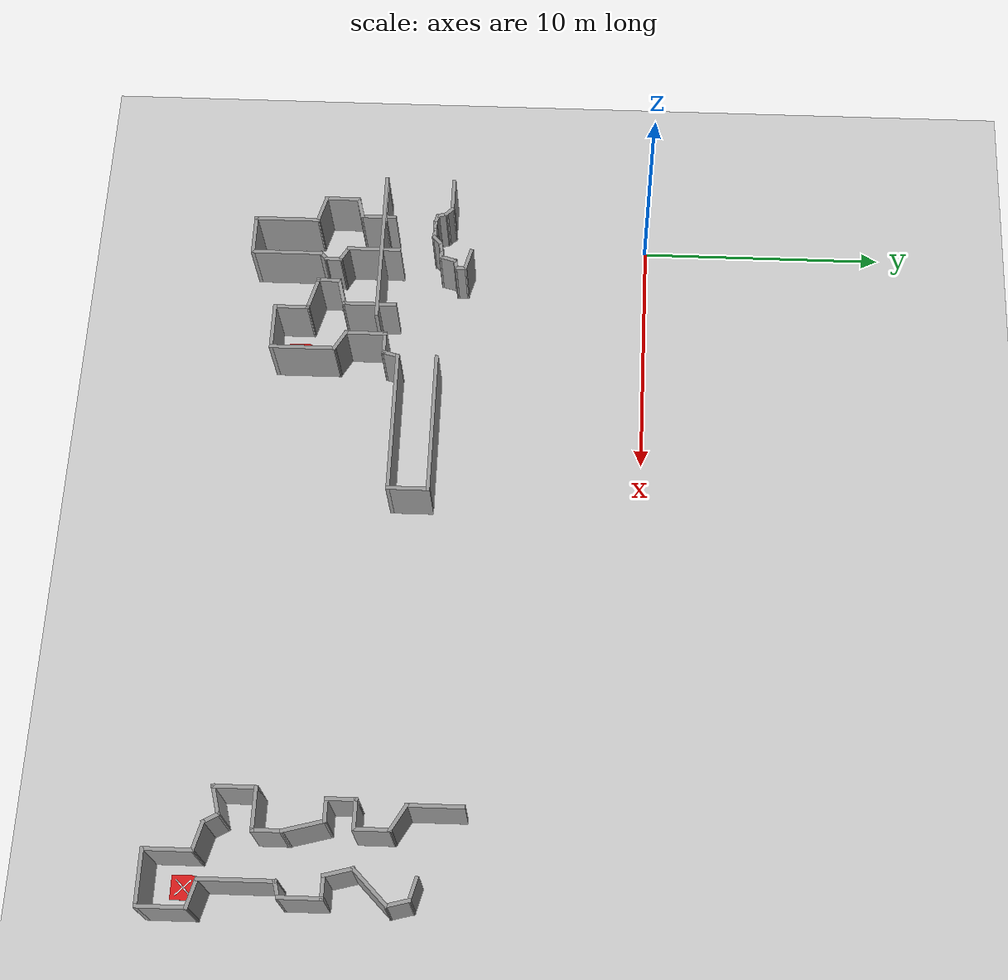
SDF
<sdf version="1.7">
 <world name="default">
  <model name="ground_plane">
   <static>1</static>
   <link name="link">
    <collision name="collision">
     <geometry><plane><normal>0 0 1</normal><size>100 100</size></plane></geometry>
     <surface>
      <contact><collide_bitmask>65535</collide_bitmask></contact>
      <friction><ode><mu>100</mu><mu2>50</mu2></ode></friction>
     </surface>
    </collision>
    <visual name="visual">
     <cast_shadows>0</cast_shadows>
     <geometry><plane><normal>0 0 1</normal><size>100 100</size></plane></geometry>
     <material>
      <script><uri>file://media/materials/scripts/gazebo.material</uri><name>Gazebo/Grey</name></script>
     </material>
    </visual>
   </link>
  </model>
  <model name="latest_world">
   <pose>-1.4911 -0.096187 0 0 -0 0</pose>
   <link name="Wall_16">
    <collision name="Wall_16_Collision">
     <geometry><box><size>1 0.15 2.5</size></box></geometry>
     <pose>0 0 1.25 0 -0 0</pose>
    </collision>
    <visual name="Wall_16_Visual">
     <pose>0 0 1.25 0 -0 0</pose>
     <geometry><box><size>1 0.15 2.5</size></box></geometry>
     <material>
      <script><uri>file://media/materials/scripts/gazebo.material</uri><name>Gazebo/Grey</name></script>
      <ambient>1 1 1 1</ambient>
     </material>
     <meta><layer>0</layer></meta>
    </visual>
    <pose>29.6813 -7.97454 0 0 -0 -0.261799</pose>
   </link>
   <link name="Wall_17">
    <collision name="Wall_17_Collision">
     <geometry><box><size>1 0.15 2.5</size></box></geometry>
     <pose>0 0 1.25 0 -0 0</pose>
    </collision>
    <visual name="Wall_17_Visual">
     <pose>0 0 1.25 0 -0 0</pose>
     <geometry><box><size>1 0.15 2.5</size></box></geometry>
     <material>
      <script><uri>file://media/materials/scripts/gazebo.material</uri><name>Gazebo/Grey</name></script>
      <ambient>1 1 1 1</ambient>
     </material>
     <meta><layer>0</layer></meta>
    </visual>
    <pose>30.2018 -8.49506 0 0 -0 -1.309</pose>
   </link>
   <link name="Wall_18">
    <collision name="Wall_18_Collision">
     <geometry><box><size>2 0.15 2.5</size></box></geometry>
     <pose>0 0 1.25 0 -0 0</pose>
    </collision>
    <visual name="Wall_18_Visual">
     <pose>0 0 1.25 0 -0 0</pose>
     <geometry><box><size>2 0.15 2.5</size></box></geometry>
     <material>
      <script><uri>file://media/materials/scripts/gazebo.material</uri><name>Gazebo/Grey</name></script>
      <ambient>1 1 1 1</ambient>
     </material>
     <meta><layer>0</layer></meta>
    </visual>
    <pose>29.6577 -9.55965 0 0 -0 -2.35619</pose>
   </link>
   <link name="Wall_19">
    <collision name="Wall_19_Collision">
     <geometry><box><size>1.25 0.15 2.5</size></box></geometry>
     <pose>0 0 1.25 0 -0 0</pose>
    </collision>
    <visual name="Wall_19_Visual">
     <pose>0 0 1.25 0 -0 0</pose>
     <geometry><box><size>1.25 0.15 2.5</size></box></geometry>
     <material>
      <script><uri>file://media/materials/scripts/gazebo.material</uri><name>Gazebo/Grey</name></script>
      <ambient>1 1 1 1</ambient>
     </material>
     <meta><layer>0</layer></meta>
    </visual>
    <pose>29.146 -10.745 0 0 -0 -1.309</pose>
   </link>
   <link name="Wall_20">
    <collision name="Wall_20_Collision">
     <geometry><box><size>1 0.15 2.5</size></box></geometry>
     <pose>0 0 1.25 0 -0 0</pose>
    </collision>
    <visual name="Wall_20_Visual">
     <pose>0 0 1.25 0 -0 0</pose>
     <geometry><box><size>1 0.15 2.5</size></box></geometry>
     <material>
      <script><uri>file://media/materials/scripts/gazebo.material</uri><name>Gazebo/Grey</name></script>
      <ambient>1 1 1 1</ambient>
     </material>
     <meta><layer>0</layer></meta>
    </visual>
    <pose>29.7134 -11.2762 0 0 -0 0</pose>
   </link>
   <link name="Wall_21">
    <collision name="Wall_21_Collision">
     <geometry><box><size>1.75 0.15 2.5</size></box></geometry>
     <pose>0 0 1.25 0 -0 0</pose>
    </collision>
    <visual name="Wall_21_Visual">
     <pose>0 0 1.25 0 -0 0</pose>
     <geometry><box><size>1.75 0.15 2.5</size></box></geometry>
     <material>
      <script><uri>file://media/materials/scripts/gazebo.material</uri><name>Gazebo/Grey</name></script>
      <ambient>1 1 1 1</ambient>
     </material>
     <meta><layer>0</layer></meta>
    </visual>
    <pose>30.1384 -12.0762 0 0 -0 -1.5708</pose>
   </link>
   <link name="Wall_22">
    <collision name="Wall_22_Collision">
     <geometry><box><size>0.75 0.15 2.5</size></box></geometry>
     <pose>0 0 1.25 0 -0 0</pose>
    </collision>
    <visual name="Wall_22_Visual">
     <pose>0 0 1.25 0 -0 0</pose>
     <geometry><box><size>0.75 0.15 2.5</size></box></geometry>
     <material>
      <script><uri>file://media/materials/scripts/gazebo.material</uri><name>Gazebo/Grey</name></script>
      <ambient>1 1 1 1</ambient>
     </material>
     <meta><layer>0</layer></meta>
    </visual>
    <pose>29.8486 -12.9539 0 0 -0 -2.87979</pose>
   </link>
   <link name="Wall_23">
    <collision name="Wall_23_Collision">
     <geometry><box><size>3 0.15 2.5</size></box></geometry>
     <pose>0 0 1.25 0 -0 0</pose>
    </collision>
    <visual name="Wall_23_Visual">
     <pose>0 0 1.25 0 -0 0</pose>
     <geometry><box><size>3 0.15 2.5</size></box></geometry>
     <material>
      <script><uri>file://media/materials/scripts/gazebo.material</uri><name>Gazebo/Grey</name></script>
      <ambient>1 1 1 1</ambient>
     </material>
     <meta><layer>0</layer></meta>
    </visual>
    <pose>29.5588 -14.4565 0 0 -0 -1.5708</pose>
   </link>
   <link name="Wall_24">
    <collision name="Wall_24_Collision">
     <geometry><box><size>1.25 0.15 2.5</size></box></geometry>
     <pose>0 0 1.25 0 -0 0</pose>
    </collision>
    <visual name="Wall_24_Visual">
     <pose>0 0 1.25 0 -0 0</pose>
     <geometry><box><size>1.25 0.15 2.5</size></box></geometry>
     <material>
      <script><uri>file://media/materials/scripts/gazebo.material</uri><name>Gazebo/Grey</name></script>
      <ambient>1 1 1 1</ambient>
     </material>
     <meta><layer>0</layer></meta>
    </visual>
    <pose>30.0901 -16.0239 0 0 -0 -0.261799</pose>
   </link>
   <link name="Wall_25">
    <collision name="Wall_25_Collision">
     <geometry><box><size>2 0.15 2.5</size></box></geometry>
     <pose>0 0 1.25 0 -0 0</pose>
    </collision>
    <visual name="Wall_25_Visual">
     <pose>0 0 1.25 0 -0 0</pose>
     <geometry><box><size>2 0.15 2.5</size></box></geometry>
     <material>
      <script><uri>file://media/materials/scripts/gazebo.material</uri><name>Gazebo/Grey</name></script>
      <ambient>1 1 1 1</ambient>
     </material>
     <meta><layer>0</layer></meta>
    </visual>
    <pose>30.6213 -17.0912 0 0 -0 -1.5708</pose>
   </link>
   <link name="Wall_26">
    <collision name="Wall_26_Collision">
     <geometry><box><size>2.25 0.15 2.5</size></box></geometry>
     <pose>0 0 1.25 0 -0 0</pose>
    </collision>
    <visual name="Wall_26_Visual">
     <pose>0 0 1.25 0 -0 0</pose>
     <geometry><box><size>2.25 0.15 2.5</size></box></geometry>
     <material>
      <script><uri>file://media/materials/scripts/gazebo.material</uri><name>Gazebo/Grey</name></script>
      <ambient>1 1 1 1</ambient>
     </material>
     <meta><layer>0</layer></meta>
    </visual>
    <pose>29.5713 -18.0162 0 0 -0 3.14159</pose>
   </link>
   <link name="Wall_27">
    <collision name="Wall_27_Collision">
     <geometry><box><size>2 0.15 2.5</size></box></geometry>
     <pose>0 0 1.25 0 -0 0</pose>
    </collision>
    <visual name="Wall_27_Visual">
     <pose>0 0 1.25 0 -0 0</pose>
     <geometry><box><size>2 0.15 2.5</size></box></geometry>
     <material>
      <script><uri>file://media/materials/scripts/gazebo.material</uri><name>Gazebo/Grey</name></script>
      <ambient>1 1 1 1</ambient>
     </material>
     <meta><layer>0</layer></meta>
    </visual>
    <pose>28.5213 -17.0912 0 0 -0 1.5708</pose>
   </link>
   <link name="Wall_28">
    <collision name="Wall_28_Collision">
     <geometry><box><size>1.25 0.15 2.5</size></box></geometry>
     <pose>0 0 1.25 0 -0 0</pose>
    </collision>
    <visual name="Wall_28_Visual">
     <pose>0 0 1.25 0 -0 0</pose>
     <geometry><box><size>1.25 0.15 2.5</size></box></geometry>
     <material>
      <script><uri>file://media/materials/scripts/gazebo.material</uri><name>Gazebo/Grey</name></script>
      <ambient>1 1 1 1</ambient>
     </material>
     <meta><layer>0</layer></meta>
    </visual>
    <pose>27.9901 -16.0239 0 0 -0 2.87979</pose>
   </link>
   <link name="Wall_280">
    <collision name="Wall_280_Collision">
     <geometry><box><size>1.5 0.15 2.5</size></box></geometry>
     <pose>0 0 1.25 0 -0 0</pose>
    </collision>
    <visual name="Wall_280_Visual">
     <pose>0 0 1.25 0 -0 0</pose>
     <geometry><box><size>1.5 0.15 2.5</size></box></geometry>
     <material>
      <script><uri>file://media/materials/scripts/gazebo.material</uri><name>Gazebo/Grey</name></script>
      <ambient>1 1 1 1</ambient>
     </material>
     <meta><layer>0</layer></meta>
    </visual>
    <pose>0.319863 -8.14426 0 0 -0 0</pose>
   </link>
   <link name="Wall_281">
    <collision name="Wall_281_Collision">
     <geometry><box><size>0.5 0.15 2.5</size></box></geometry>
     <pose>0 0 1.25 0 -0 0</pose>
    </collision>
    <visual name="Wall_281_Visual">
     <pose>0 0 1.25 0 -0 0</pose>
     <geometry><box><size>0.5 0.15 2.5</size></box></geometry>
     <material>
      <script><uri>file://media/materials/scripts/gazebo.material</uri><name>Gazebo/Grey</name></script>
      <ambient>1 1 1 1</ambient>
     </material>
     <meta><layer>0</layer></meta>
    </visual>
    <pose>1.11861 -8.26801 0 0 -0 -0.785398</pose>
   </link>
   <link name="Wall_282">
    <collision name="Wall_282_Collision">
     <geometry><box><size>0.5 0.15 2.5</size></box></geometry>
     <pose>0 0 1.25 0 -0 0</pose>
    </collision>
    <visual name="Wall_282_Visual">
     <pose>0 0 1.25 0 -0 0</pose>
     <geometry><box><size>0.5 0.15 2.5</size></box></geometry>
     <material>
      <script><uri>file://media/materials/scripts/gazebo.material</uri><name>Gazebo/Grey</name></script>
      <ambient>1 1 1 1</ambient>
     </material>
     <meta><layer>0</layer></meta>
    </visual>
    <pose>1.28764 -8.56079 0 0 -0 -1.309</pose>
   </link>
   <link name="Wall_283">
    <collision name="Wall_283_Collision">
     <geometry><box><size>0.5 0.15 2.5</size></box></geometry>
     <pose>0 0 1.25 0 -0 0</pose>
    </collision>
    <visual name="Wall_283_Visual">
     <pose>0 0 1.25 0 -0 0</pose>
     <geometry><box><size>0.5 0.15 2.5</size></box></geometry>
     <material>
      <script><uri>file://media/materials/scripts/gazebo.material</uri><name>Gazebo/Grey</name></script>
      <ambient>1 1 1 1</ambient>
     </material>
     <meta><layer>0</layer></meta>
    </visual>
    <pose>1.50197 -8.77512 0 0 -0 -0.261799</pose>
   </link>
   <link name="Wall_284">
    <collision name="Wall_284_Collision">
     <geometry><box><size>0.5 0.15 2.5</size></box></geometry>
     <pose>0 0 1.25 0 -0 0</pose>
    </collision>
    <visual name="Wall_284_Visual">
     <pose>0 0 1.25 0 -0 0</pose>
     <geometry><box><size>0.5 0.15 2.5</size></box></geometry>
     <material>
      <script><uri>file://media/materials/scripts/gazebo.material</uri><name>Gazebo/Grey</name></script>
      <ambient>1 1 1 1</ambient>
     </material>
     <meta><layer>0</layer></meta>
    </visual>
    <pose>1.84601 -8.82041 0 0 -0 0</pose>
   </link>
   <link name="Wall_285">
    <collision name="Wall_285_Collision">
     <geometry><box><size>0.5 0.15 2.5</size></box></geometry>
     <pose>0 0 1.25 0 -0 0</pose>
    </collision>
    <visual name="Wall_285_Visual">
     <pose>0 0 1.25 0 -0 0</pose>
     <geometry><box><size>0.5 0.15 2.5</size></box></geometry>
     <material>
      <script><uri>file://media/materials/scripts/gazebo.material</uri><name>Gazebo/Grey</name></script>
      <ambient>1 1 1 1</ambient>
     </material>
     <meta><layer>0</layer></meta>
    </visual>
    <pose>2.19601 -8.82041 0 0 -0 0</pose>
   </link>
   <link name="Wall_286">
    <collision name="Wall_286_Collision">
     <geometry><box><size>0.5 0.15 2.5</size></box></geometry>
     <pose>0 0 1.25 0 -0 0</pose>
    </collision>
    <visual name="Wall_286_Visual">
     <pose>0 0 1.25 0 -0 0</pose>
     <geometry><box><size>0.5 0.15 2.5</size></box></geometry>
     <material>
      <script><uri>file://media/materials/scripts/gazebo.material</uri><name>Gazebo/Grey</name></script>
      <ambient>1 1 1 1</ambient>
     </material>
     <meta><layer>0</layer></meta>
    </visual>
    <pose>2.49476 -8.69667 0 0 -0 0.785398</pose>
   </link>
   <link name="Wall_287">
    <collision name="Wall_287_Collision">
     <geometry><box><size>0.5 0.15 2.5</size></box></geometry>
     <pose>0 0 1.25 0 -0 0</pose>
    </collision>
    <visual name="Wall_287_Visual">
     <pose>0 0 1.25 0 -0 0</pose>
     <geometry><box><size>0.5 0.15 2.5</size></box></geometry>
     <material>
      <script><uri>file://media/materials/scripts/gazebo.material</uri><name>Gazebo/Grey</name></script>
      <ambient>1 1 1 1</ambient>
     </material>
     <meta><layer>0</layer></meta>
    </visual>
    <pose>2.78754 -8.52763 0 0 -0 0.261799</pose>
   </link>
   <link name="Wall_288">
    <collision name="Wall_288_Collision">
     <geometry><box><size>0.5 0.15 2.5</size></box></geometry>
     <pose>0 0 1.25 0 -0 0</pose>
    </collision>
    <visual name="Wall_288_Visual">
     <pose>0 0 1.25 0 -0 0</pose>
     <geometry><box><size>0.5 0.15 2.5</size></box></geometry>
     <material>
      <script><uri>file://media/materials/scripts/gazebo.material</uri><name>Gazebo/Grey</name></script>
      <ambient>1 1 1 1</ambient>
     </material>
     <meta><layer>0</layer></meta>
    </visual>
    <pose>3.13157 -8.48234 0 0 -0 0</pose>
   </link>
   <link name="Wall_289">
    <collision name="Wall_289_Collision">
     <geometry><box><size>0.75 0.15 2.5</size></box></geometry>
     <pose>0 0 1.25 0 -0 0</pose>
    </collision>
    <visual name="Wall_289_Visual">
     <pose>0 0 1.25 0 -0 0</pose>
     <geometry><box><size>0.75 0.15 2.5</size></box></geometry>
     <material>
      <script><uri>file://media/materials/scripts/gazebo.material</uri><name>Gazebo/Grey</name></script>
      <ambient>1 1 1 1</ambient>
     </material>
     <meta><layer>0</layer></meta>
    </visual>
    <pose>3.38422 -8.19256 0 0 -0 1.309</pose>
   </link>
   <link name="Wall_29">
    <collision name="Wall_29_Collision">
     <geometry><box><size>0.75 0.15 2.5</size></box></geometry>
     <pose>0 0 1.25 0 -0 0</pose>
    </collision>
    <visual name="Wall_29_Visual">
     <pose>0 0 1.25 0 -0 0</pose>
     <geometry><box><size>0.75 0.15 2.5</size></box></geometry>
     <material>
      <script><uri>file://media/materials/scripts/gazebo.material</uri><name>Gazebo/Grey</name></script>
      <ambient>1 1 1 1</ambient>
     </material>
     <meta><layer>0</layer></meta>
    </visual>
    <pose>27.3088 -15.6217 0 0 -0 2.0944</pose>
   </link>
   <link name="Wall_290">
    <collision name="Wall_290_Collision">
     <geometry><box><size>0.5 0.15 2.5</size></box></geometry>
     <pose>0 0 1.25 0 -0 0</pose>
    </collision>
    <visual name="Wall_290_Visual">
     <pose>0 0 1.25 0 -0 0</pose>
     <geometry><box><size>0.5 0.15 2.5</size></box></geometry>
     <material>
      <script><uri>file://media/materials/scripts/gazebo.material</uri><name>Gazebo/Grey</name></script>
      <ambient>1 1 1 1</ambient>
     </material>
     <meta><layer>0</layer></meta>
    </visual>
    <pose>3.6309 -7.85749 0 0 -0 0.261799</pose>
   </link>
   <link name="Wall_291">
    <collision name="Wall_291_Collision">
     <geometry><box><size>0.5 0.15 2.5</size></box></geometry>
     <pose>0 0 1.25 0 -0 0</pose>
    </collision>
    <visual name="Wall_291_Visual">
     <pose>0 0 1.25 0 -0 0</pose>
     <geometry><box><size>0.5 0.15 2.5</size></box></geometry>
     <material>
      <script><uri>file://media/materials/scripts/gazebo.material</uri><name>Gazebo/Grey</name></script>
      <ambient>1 1 1 1</ambient>
     </material>
     <meta><layer>0</layer></meta>
    </visual>
    <pose>3.79994 -7.6372 0 0 -0 1.5708</pose>
   </link>
   <link name="Wall_292">
    <collision name="Wall_292_Collision">
     <geometry><box><size>1 0.15 2.5</size></box></geometry>
     <pose>0 0 1.25 0 -0 0</pose>
    </collision>
    <visual name="Wall_292_Visual">
     <pose>0 0 1.25 0 -0 0</pose>
     <geometry><box><size>1 0.15 2.5</size></box></geometry>
     <material>
      <script><uri>file://media/materials/scripts/gazebo.material</uri><name>Gazebo/Grey</name></script>
      <ambient>1 1 1 1</ambient>
     </material>
     <meta><layer>0</layer></meta>
    </visual>
    <pose>3.38942 -7.3522 0 0 -0 2.87979</pose>
   </link>
   <link name="Wall_30">
    <collision name="Wall_30_Collision">
     <geometry><box><size>1.25 0.15 2.5</size></box></geometry>
     <pose>0 0 1.25 0 -0 0</pose>
    </collision>
    <visual name="Wall_30_Visual">
     <pose>0 0 1.25 0 -0 0</pose>
     <geometry><box><size>1.25 0.15 2.5</size></box></geometry>
     <material>
      <script><uri>file://media/materials/scripts/gazebo.material</uri><name>Gazebo/Grey</name></script>
      <ambient>1 1 1 1</ambient>
     </material>
     <meta><layer>0</layer></meta>
    </visual>
    <pose>26.6276 -15.5043 0 0 -0 -2.87979</pose>
   </link>
   <link name="Wall_31">
    <collision name="Wall_31_Collision">
     <geometry><box><size>1.75 0.15 2.5</size></box></geometry>
     <pose>0 0 1.25 0 -0 0</pose>
    </collision>
    <visual name="Wall_31_Visual">
     <pose>0 0 1.25 0 -0 0</pose>
     <geometry><box><size>1.75 0.15 2.5</size></box></geometry>
     <material>
      <script><uri>file://media/materials/scripts/gazebo.material</uri><name>Gazebo/Grey</name></script>
      <ambient>1 1 1 1</ambient>
     </material>
     <meta><layer>0</layer></meta>
    </visual>
    <pose>26.0963 -14.8466 0 0 -0 1.5708</pose>
   </link>
   <link name="Wall_32">
    <collision name="Wall_32_Collision">
     <geometry><box><size>1.75 0.15 2.5</size></box></geometry>
     <pose>0 0 1.25 0 -0 0</pose>
    </collision>
    <visual name="Wall_32_Visual">
     <pose>0 0 1.25 0 -0 0</pose>
     <geometry><box><size>1.75 0.15 2.5</size></box></geometry>
     <material>
      <script><uri>file://media/materials/scripts/gazebo.material</uri><name>Gazebo/Grey</name></script>
      <ambient>1 1 1 1</ambient>
     </material>
     <meta><layer>0</layer></meta>
    </visual>
    <pose>26.8963 -14.0466 0 0 -0 0</pose>
   </link>
   <link name="Wall_33">
    <collision name="Wall_33_Collision">
     <geometry><box><size>1.25 0.15 2.5</size></box></geometry>
     <pose>0 0 1.25 0 -0 0</pose>
    </collision>
    <visual name="Wall_33_Visual">
     <pose>0 0 1.25 0 -0 0</pose>
     <geometry><box><size>1.25 0.15 2.5</size></box></geometry>
     <material>
      <script><uri>file://media/materials/scripts/gazebo.material</uri><name>Gazebo/Grey</name></script>
      <ambient>1 1 1 1</ambient>
     </material>
     <meta><layer>0</layer></meta>
    </visual>
    <pose>27.6963 -13.4966 0 0 -0 1.5708</pose>
   </link>
   <link name="Wall_34">
    <collision name="Wall_34_Collision">
     <geometry><box><size>1.75 0.15 2.5</size></box></geometry>
     <pose>0 0 1.25 0 -0 0</pose>
    </collision>
    <visual name="Wall_34_Visual">
     <pose>0 0 1.25 0 -0 0</pose>
     <geometry><box><size>1.75 0.15 2.5</size></box></geometry>
     <material>
      <script><uri>file://media/materials/scripts/gazebo.material</uri><name>Gazebo/Grey</name></script>
      <ambient>1 1 1 1</ambient>
     </material>
     <meta><layer>0</layer></meta>
    </visual>
    <pose>27.4892 -12.1739 0 0 -0 1.8326</pose>
   </link>
   <link name="Wall_35">
    <collision name="Wall_35_Collision">
     <geometry><box><size>1 0.15 2.5</size></box></geometry>
     <pose>0 0 1.25 0 -0 0</pose>
    </collision>
    <visual name="Wall_35_Visual">
     <pose>0 0 1.25 0 -0 0</pose>
     <geometry><box><size>1 0.15 2.5</size></box></geometry>
     <material>
      <script><uri>file://media/materials/scripts/gazebo.material</uri><name>Gazebo/Grey</name></script>
      <ambient>1 1 1 1</ambient>
     </material>
     <meta><layer>0</layer></meta>
    </visual>
    <pose>26.8572 -11.4011 0 0 -0 3.14159</pose>
   </link>
   <link name="Wall_36">
    <collision name="Wall_36_Collision">
     <geometry><box><size>1.25 0.15 2.5</size></box></geometry>
     <pose>0 0 1.25 0 -0 0</pose>
    </collision>
    <visual name="Wall_36_Visual">
     <pose>0 0 1.25 0 -0 0</pose>
     <geometry><box><size>1.25 0.15 2.5</size></box></geometry>
     <material>
      <script><uri>file://media/materials/scripts/gazebo.material</uri><name>Gazebo/Grey</name></script>
      <ambient>1 1 1 1</ambient>
     </material>
     <meta><layer>0</layer></meta>
    </visual>
    <pose>26.4322 -10.8511 0 0 -0 1.5708</pose>
   </link>
   <link name="Wall_37">
    <collision name="Wall_37_Collision">
     <geometry><box><size>1.25 0.15 2.5</size></box></geometry>
     <pose>0 0 1.25 0 -0 0</pose>
    </collision>
    <visual name="Wall_37_Visual">
     <pose>0 0 1.25 0 -0 0</pose>
     <geometry><box><size>1.25 0.15 2.5</size></box></geometry>
     <material>
      <script><uri>file://media/materials/scripts/gazebo.material</uri><name>Gazebo/Grey</name></script>
      <ambient>1 1 1 1</ambient>
     </material>
     <meta><layer>0</layer></meta>
    </visual>
    <pose>26.9822 -10.3011 0 0 -0 0</pose>
   </link>
   <link name="Wall_38">
    <collision name="Wall_38_Collision">
     <geometry><box><size>1.5 0.15 2.5</size></box></geometry>
     <pose>0 0 1.25 0 -0 0</pose>
    </collision>
    <visual name="Wall_38_Visual">
     <pose>0 0 1.25 0 -0 0</pose>
     <geometry><box><size>1.5 0.15 2.5</size></box></geometry>
     <material>
      <script><uri>file://media/materials/scripts/gazebo.material</uri><name>Gazebo/Grey</name></script>
      <ambient>1 1 1 1</ambient>
     </material>
     <meta><layer>0</layer></meta>
    </visual>
    <pose>27.5322 -9.62614 0 0 -0 1.5708</pose>
   </link>
   <link name="Wall_39">
    <collision name="Wall_39_Collision">
     <geometry><box><size>1.25 0.15 2.5</size></box></geometry>
     <pose>0 0 1.25 0 -0 0</pose>
    </collision>
    <visual name="Wall_39_Visual">
     <pose>0 0 1.25 0 -0 0</pose>
     <geometry><box><size>1.25 0.15 2.5</size></box></geometry>
     <material>
      <script><uri>file://media/materials/scripts/gazebo.material</uri><name>Gazebo/Grey</name></script>
      <ambient>1 1 1 1</ambient>
     </material>
     <meta><layer>0</layer></meta>
    </visual>
    <pose>27.0559 -8.67614 0 0 -0 2.61799</pose>
   </link>
   <link name="Wall_40">
    <collision name="Wall_40_Collision">
     <geometry><box><size>2.25 0.15 2.5</size></box></geometry>
     <pose>0 0 1.25 0 -0 0</pose>
    </collision>
    <visual name="Wall_40_Visual">
     <pose>0 0 1.25 0 -0 0</pose>
     <geometry><box><size>2.25 0.15 2.5</size></box></geometry>
     <material>
      <script><uri>file://media/materials/scripts/gazebo.material</uri><name>Gazebo/Grey</name></script>
      <ambient>1 1 1 1</ambient>
     </material>
     <meta><layer>0</layer></meta>
    </visual>
    <pose>26.5796 -7.35114 0 0 -0 1.5708</pose>
   </link>
   <link name="Wall_53">
    <collision name="Wall_53_Collision">
     <geometry><box><size>6 0.15 2.5</size></box></geometry>
     <pose>0 0 1.25 0 -0 0</pose>
    </collision>
    <visual name="Wall_53_Visual">
     <pose>0 0 1.25 0 -0 0</pose>
     <geometry><box><size>6 0.15 2.5</size></box></geometry>
     <material>
      <script><uri>file://media/materials/scripts/gazebo.material</uri><name>Gazebo/Grey</name></script>
      <ambient>1 1 1 1</ambient>
     </material>
     <meta><layer>0</layer></meta>
    </visual>
    <pose>10.9128 -8.40067 0 0 -0 0</pose>
   </link>
   <link name="Wall_54">
    <collision name="Wall_54_Collision">
     <geometry><box><size>1.75 0.15 2.5</size></box></geometry>
     <pose>0 0 1.25 0 -0 0</pose>
    </collision>
    <visual name="Wall_54_Visual">
     <pose>0 0 1.25 0 -0 0</pose>
     <geometry><box><size>1.75 0.15 2.5</size></box></geometry>
     <material>
      <script><uri>file://media/materials/scripts/gazebo.material</uri><name>Gazebo/Grey</name></script>
      <ambient>1 1 1 1</ambient>
     </material>
     <meta><layer>0</layer></meta>
    </visual>
    <pose>13.8378 -9.20067 0 0 -0 -1.5708</pose>
   </link>
   <link name="Wall_55">
    <collision name="Wall_55_Collision">
     <geometry><box><size>6 0.15 2.5</size></box></geometry>
     <pose>0 0 1.25 0 -0 0</pose>
    </collision>
    <visual name="Wall_55_Visual">
     <pose>0 0 1.25 0 -0 0</pose>
     <geometry><box><size>6 0.15 2.5</size></box></geometry>
     <material>
      <script><uri>file://media/materials/scripts/gazebo.material</uri><name>Gazebo/Grey</name></script>
      <ambient>1 1 1 1</ambient>
     </material>
     <meta><layer>0</layer></meta>
    </visual>
    <pose>10.9128 -10.0007 0 0 -0 3.14159</pose>
   </link>
   <link name="Wall_56">
    <collision name="Wall_56_Collision">
     <geometry><box><size>0.75 0.15 2.5</size></box></geometry>
     <pose>0 0 1.25 0 -0 0</pose>
    </collision>
    <visual name="Wall_56_Visual">
     <pose>0 0 1.25 0 -0 0</pose>
     <geometry><box><size>0.75 0.15 2.5</size></box></geometry>
     <material>
      <script><uri>file://media/materials/scripts/gazebo.material</uri><name>Gazebo/Grey</name></script>
      <ambient>1 1 1 1</ambient>
     </material>
     <meta><layer>0</layer></meta>
    </visual>
    <pose>7.9102 -10.2904 0 0 -0 -1.8326</pose>
   </link>
   <link name="Wall_57">
    <collision name="Wall_57_Collision">
     <geometry><box><size>1 0.15 2.5</size></box></geometry>
     <pose>0 0 1.25 0 -0 0</pose>
    </collision>
    <visual name="Wall_57_Visual">
     <pose>0 0 1.25 0 -0 0</pose>
     <geometry><box><size>1 0.15 2.5</size></box></geometry>
     <material>
      <script><uri>file://media/materials/scripts/gazebo.material</uri><name>Gazebo/Grey</name></script>
      <ambient>1 1 1 1</ambient>
     </material>
     <meta><layer>0</layer></meta>
    </visual>
    <pose>7.40755 -10.5802 0 0 -0 3.14159</pose>
   </link>
   <link name="Wall_58">
    <collision name="Wall_58_Collision">
     <geometry><box><size>1.75 0.15 2.5</size></box></geometry>
     <pose>0 0 1.25 0 -0 0</pose>
    </collision>
    <visual name="Wall_58_Visual">
     <pose>0 0 1.25 0 -0 0</pose>
     <geometry><box><size>1.75 0.15 2.5</size></box></geometry>
     <material>
      <script><uri>file://media/materials/scripts/gazebo.material</uri><name>Gazebo/Grey</name></script>
      <ambient>1 1 1 1</ambient>
     </material>
     <meta><layer>0</layer></meta>
    </visual>
    <pose>6.98255 -11.3802 0 0 -0 -1.5708</pose>
   </link>
   <link name="Wall_59">
    <collision name="Wall_59_Collision">
     <geometry><box><size>1 0.15 2.5</size></box></geometry>
     <pose>0 0 1.25 0 -0 0</pose>
    </collision>
    <visual name="Wall_59_Visual">
     <pose>0 0 1.25 0 -0 0</pose>
     <geometry><box><size>1 0.15 2.5</size></box></geometry>
     <material>
      <script><uri>file://media/materials/scripts/gazebo.material</uri><name>Gazebo/Grey</name></script>
      <ambient>1 1 1 1</ambient>
     </material>
     <meta><layer>0</layer></meta>
    </visual>
    <pose>7.35061 -12.3927 0 0 -0 -0.523599</pose>
   </link>
   <link name="Wall_60">
    <collision name="Wall_60_Collision">
     <geometry><box><size>2.75 0.15 2.5</size></box></geometry>
     <pose>0 0 1.25 0 -0 0</pose>
    </collision>
    <visual name="Wall_60_Visual">
     <pose>0 0 1.25 0 -0 0</pose>
     <geometry><box><size>2.75 0.15 2.5</size></box></geometry>
     <material>
      <script><uri>file://media/materials/scripts/gazebo.material</uri><name>Gazebo/Grey</name></script>
      <ambient>1 1 1 1</ambient>
     </material>
     <meta><layer>0</layer></meta>
    </visual>
    <pose>7.71867 -13.9052 0 0 -0 -1.5708</pose>
   </link>
   <link name="Wall_61">
    <collision name="Wall_61_Collision">
     <geometry><box><size>2 0.15 2.5</size></box></geometry>
     <pose>0 0 1.25 0 -0 0</pose>
    </collision>
    <visual name="Wall_61_Visual">
     <pose>0 0 1.25 0 -0 0</pose>
     <geometry><box><size>2 0.15 2.5</size></box></geometry>
     <material>
      <script><uri>file://media/materials/scripts/gazebo.material</uri><name>Gazebo/Grey</name></script>
      <ambient>1 1 1 1</ambient>
     </material>
     <meta><layer>0</layer></meta>
    </visual>
    <pose>6.79367 -15.2052 0 0 -0 3.14159</pose>
   </link>
   <link name="Wall_62">
    <collision name="Wall_62_Collision">
     <geometry><box><size>1.5 0.15 2.5</size></box></geometry>
     <pose>0 0 1.25 0 -0 0</pose>
    </collision>
    <visual name="Wall_62_Visual">
     <pose>0 0 1.25 0 -0 0</pose>
     <geometry><box><size>1.5 0.15 2.5</size></box></geometry>
     <material>
      <script><uri>file://media/materials/scripts/gazebo.material</uri><name>Gazebo/Grey</name></script>
      <ambient>1 1 1 1</ambient>
     </material>
     <meta><layer>0</layer></meta>
    </visual>
    <pose>5.86867 -14.5302 0 0 -0 1.5708</pose>
   </link>
   <link name="Wall_63">
    <collision name="Wall_63_Collision">
     <geometry><box><size>1.5 0.15 2.5</size></box></geometry>
     <pose>0 0 1.25 0 -0 0</pose>
    </collision>
    <visual name="Wall_63_Visual">
     <pose>0 0 1.25 0 -0 0</pose>
     <geometry><box><size>1.5 0.15 2.5</size></box></geometry>
     <material>
      <script><uri>file://media/materials/scripts/gazebo.material</uri><name>Gazebo/Grey</name></script>
      <ambient>1 1 1 1</ambient>
     </material>
     <meta><layer>0</layer></meta>
    </visual>
    <pose>5.21667 -13.6805 0 0 -0 2.87979</pose>
   </link>
   <link name="Wall_64">
    <collision name="Wall_64_Collision">
     <geometry><box><size>1 0.15 2.5</size></box></geometry>
     <pose>0 0 1.25 0 -0 0</pose>
    </collision>
    <visual name="Wall_64_Visual">
     <pose>0 0 1.25 0 -0 0</pose>
     <geometry><box><size>1 0.15 2.5</size></box></geometry>
     <material>
      <script><uri>file://media/materials/scripts/gazebo.material</uri><name>Gazebo/Grey</name></script>
      <ambient>1 1 1 1</ambient>
     </material>
     <meta><layer>0</layer></meta>
    </visual>
    <pose>4.56467 -13.0808 0 0 -0 1.5708</pose>
   </link>
   <link name="Wall_65">
    <collision name="Wall_65_Collision">
     <geometry><box><size>1.25 0.15 2.5</size></box></geometry>
     <pose>0 0 1.25 0 -0 0</pose>
    </collision>
    <visual name="Wall_65_Visual">
     <pose>0 0 1.25 0 -0 0</pose>
     <geometry><box><size>1.25 0.15 2.5</size></box></geometry>
     <material>
      <script><uri>file://media/materials/scripts/gazebo.material</uri><name>Gazebo/Grey</name></script>
      <ambient>1 1 1 1</ambient>
     </material>
     <meta><layer>0</layer></meta>
    </visual>
    <pose>5.09593 -12.5135 0 0 -0 0.261799</pose>
   </link>
   <link name="Wall_66">
    <collision name="Wall_66_Collision">
     <geometry><box><size>2.25 0.15 2.5</size></box></geometry>
     <pose>0 0 1.25 0 -0 0</pose>
    </collision>
    <visual name="Wall_66_Visual">
     <pose>0 0 1.25 0 -0 0</pose>
     <geometry><box><size>2.25 0.15 2.5</size></box></geometry>
     <material>
      <script><uri>file://media/materials/scripts/gazebo.material</uri><name>Gazebo/Grey</name></script>
      <ambient>1 1 1 1</ambient>
     </material>
     <meta><layer>0</layer></meta>
    </visual>
    <pose>5.62719 -11.3211 0 0 -0 1.5708</pose>
   </link>
   <link name="Wall_67">
    <collision name="Wall_67_Collision">
     <geometry><box><size>6.60 0.15 2.5</size></box></geometry>
     <pose>0 0 1.25 0 -0 0</pose>
    </collision>
    <visual name="Wall_67_Visual">
     <pose>0 0 1.25 0 -0 0</pose>
     <geometry><box><size>6.60 0.15 2.5</size></box></geometry>
     <material>
      <script><uri>file://media/materials/scripts/gazebo.material</uri><name>Gazebo/Grey</name></script>
      <ambient>1 1 1 1</ambient>
     </material>
     <meta><layer>0</layer></meta>
    </visual>
    <pose>2.83609 -11.0000 0 0 -0 3.14159</pose>
   </link>
   <link name="Wall_68">
    <collision name="Wall_68_Collision">
     <geometry><box><size>2.25 0.15 2.5</size></box></geometry>
     <pose>0 0 1.25 0 -0 0</pose>
    </collision>
    <visual name="Wall_68_Visual">
     <pose>0 0 1.25 0 -0 0</pose>
     <geometry><box><size>2.25 0.15 2.5</size></box></geometry>
     <material>
      <script><uri>file://media/materials/scripts/gazebo.material</uri><name>Gazebo/Grey</name></script>
      <ambient>1 1 1 1</ambient>
     </material>
     <meta><layer>0</layer></meta>
    </visual>
    <pose>3.02719 -11.3211 0 0 -0 -1.5708</pose>
   </link>
   <link name="Wall_69">
    <collision name="Wall_69_Collision">
     <geometry><box><size>0.75 0.15 2.5</size></box></geometry>
     <pose>0 0 1.25 0 -0 0</pose>
    </collision>
    <visual name="Wall_69_Visual">
     <pose>0 0 1.25 0 -0 0</pose>
     <geometry><box><size>0.75 0.15 2.5</size></box></geometry>
     <material>
      <script><uri>file://media/materials/scripts/gazebo.material</uri><name>Gazebo/Grey</name></script>
      <ambient>1 1 1 1</ambient>
     </material>
     <meta><layer>0</layer></meta>
    </visual>
    <pose>3.287 -12.5211 0 0 -0 -0.523599</pose>
   </link>
   <link name="Wall_70">
    <collision name="Wall_70_Collision">
     <geometry><box><size>0.75 0.15 2.5</size></box></geometry>
     <pose>0 0 1.25 0 -0 0</pose>
    </collision>
    <visual name="Wall_70_Visual">
     <pose>0 0 1.25 0 -0 0</pose>
     <geometry><box><size>0.75 0.15 2.5</size></box></geometry>
     <material>
      <script><uri>file://media/materials/scripts/gazebo.material</uri><name>Gazebo/Grey</name></script>
      <ambient>1 1 1 1</ambient>
     </material>
     <meta><layer>0</layer></meta>
    </visual>
    <pose>3.54681 -12.9711 0 0 -0 -1.5708</pose>
   </link>
   <link name="Wall_71">
    <collision name="Wall_71_Collision">
     <geometry><box><size>0.5 0.15 2.5</size></box></geometry>
     <pose>0 0 1.25 0 -0 0</pose>
    </collision>
    <visual name="Wall_71_Visual">
     <pose>0 0 1.25 0 -0 0</pose>
     <geometry><box><size>0.5 0.15 2.5</size></box></geometry>
     <material>
      <script><uri>file://media/materials/scripts/gazebo.material</uri><name>Gazebo/Grey</name></script>
      <ambient>1 1 1 1</ambient>
     </material>
     <meta><layer>0</layer></meta>
    </visual>
    <pose>3.42306 -13.3949 0 0 -0 -2.35619</pose>
   </link>
   <link name="Wall_72">
    <collision name="Wall_72_Collision">
     <geometry><box><size>3 0.15 2.5</size></box></geometry>
     <pose>0 0 1.25 0 -0 0</pose>
    </collision>
    <visual name="Wall_72_Visual">
     <pose>0 0 1.25 0 -0 0</pose>
     <geometry><box><size>3 0.15 2.5</size></box></geometry>
     <material>
      <script><uri>file://media/materials/scripts/gazebo.material</uri><name>Gazebo/Grey</name></script>
      <ambient>1 1 1 1</ambient>
     </material>
     <meta><layer>0</layer></meta>
    </visual>
    <pose>3.29932 -14.9436 0 0 -0 -1.5708</pose>
   </link>
   <link name="Wall_73">
    <collision name="Wall_73_Collision">
     <geometry><box><size>1.75 0.15 2.5</size></box></geometry>
     <pose>0 0 1.25 0 -0 0</pose>
    </collision>
    <visual name="Wall_73_Visual">
     <pose>0 0 1.25 0 -0 0</pose>
     <geometry><box><size>1.75 0.15 2.5</size></box></geometry>
     <material>
      <script><uri>file://media/materials/scripts/gazebo.material</uri><name>Gazebo/Grey</name></script>
      <ambient>1 1 1 1</ambient>
     </material>
     <meta><layer>0</layer></meta>
    </visual>
    <pose>2.49932 -16.3686 0 0 -0 3.14159</pose>
   </link>
   <link name="Wall_74">
    <collision name="Wall_74_Collision">
     <geometry><box><size>2.75 0.15 2.5</size></box></geometry>
     <pose>0 0 1.25 0 -0 0</pose>
    </collision>
    <visual name="Wall_74_Visual">
     <pose>0 0 1.25 0 -0 0</pose>
     <geometry><box><size>2.75 0.15 2.5</size></box></geometry>
     <material>
      <script><uri>file://media/materials/scripts/gazebo.material</uri><name>Gazebo/Grey</name></script>
      <ambient>1 1 1 1</ambient>
     </material>
     <meta><layer>0</layer></meta>
    </visual>
    <pose>1.69932 -15.0686 0 0 -0 1.5708</pose>
   </link>
   <link name="Wall_75">
    <collision name="Wall_75_Collision">
     <geometry><box><size>1.25 0.15 2.5</size></box></geometry>
     <pose>0 0 1.25 0 -0 0</pose>
    </collision>
    <visual name="Wall_75_Visual">
     <pose>0 0 1.25 0 -0 0</pose>
     <geometry><box><size>1.25 0.15 2.5</size></box></geometry>
     <material>
      <script><uri>file://media/materials/scripts/gazebo.material</uri><name>Gazebo/Grey</name></script>
      <ambient>1 1 1 1</ambient>
     </material>
     <meta><layer>0</layer></meta>
    </visual>
    <pose>1.16806 -13.6263 0 0 -0 2.87979</pose>
   </link>
   <link name="Wall_76">
    <collision name="Wall_76_Collision">
     <geometry><box><size>1.5 0.15 2.5</size></box></geometry>
     <pose>0 0 1.25 0 -0 0</pose>
    </collision>
    <visual name="Wall_76_Visual">
     <pose>0 0 1.25 0 -0 0</pose>
     <geometry><box><size>1.5 0.15 2.5</size></box></geometry>
     <material>
      <script><uri>file://media/materials/scripts/gazebo.material</uri><name>Gazebo/Grey</name></script>
      <ambient>1 1 1 1</ambient>
     </material>
     <meta><layer>0</layer></meta>
    </visual>
    <pose>0.6368 -12.8089 0 0 -0 1.5708</pose>
   </link>
   <link name="Wall_77">
    <collision name="Wall_77_Collision">
     <geometry><box><size>1 0.15 2.5</size></box></geometry>
     <pose>0 0 1.25 0 -0 0</pose>
    </collision>
    <visual name="Wall_77_Visual">
     <pose>0 0 1.25 0 -0 0</pose>
     <geometry><box><size>1 0.15 2.5</size></box></geometry>
     <material>
      <script><uri>file://media/materials/scripts/gazebo.material</uri><name>Gazebo/Grey</name></script>
      <ambient>1 1 1 1</ambient>
     </material>
     <meta><layer>0</layer></meta>
    </visual>
    <pose>1.04732 -12.0239 0 0 -0 0.261799</pose>
   </link>
   <link name="Wall_78">
    <collision name="Wall_78_Collision">
     <geometry><box><size>1.5 0.15 2.5</size></box></geometry>
     <pose>0 0 1.25 0 -0 0</pose>
    </collision>
    <visual name="Wall_78_Visual">
     <pose>0 0 1.25 0 -0 0</pose>
     <geometry><box><size>1.5 0.15 2.5</size></box></geometry>
     <material>
      <script><uri>file://media/materials/scripts/gazebo.material</uri><name>Gazebo/Grey</name></script>
      <ambient>1 1 1 1</ambient>
     </material>
     <meta><layer>0</layer></meta>
    </visual>
    <pose>1.45784 -11.2389 0 0 -0 1.5708</pose>
   </link>
   <link name="Wall_79">
    <collision name="Wall_79_Collision">
     <geometry><box><size>1.70 0.15 2.5</size></box></geometry>
     <pose>0 0 1.25 0 -0 0</pose>
    </collision>
    <visual name="Wall_79_Visual">
     <pose>0 0 1.25 0 -0 0</pose>
     <geometry><box><size>1.70 0.15 2.5</size></box></geometry>
     <material>
      <script><uri>file://media/materials/scripts/gazebo.material</uri><name>Gazebo/Grey</name></script>
      <ambient>1 1 1 1</ambient>
     </material>
     <meta><layer>0</layer></meta>
    </visual>
    <pose>0.850000 -10.9500 0 0 -0 3.14159</pose>
   </link>
   <static>1</static>
  </model>
  <model name="semantic_marker_dead_end_8">
   <static>true</static>
   <pose>0.850 -15.400 0 0 0 0.0000</pose>
   <link name="link">
    <visual name="dead_end_patch">
     <pose>0 0 0.005 0 0 0</pose>
     <geometry><box><size>0.95 0.95 0.010</size></box></geometry>
     <material><ambient>0.85 0.10 0.10 1</ambient><diffuse>0.85 0.10 0.10 1</diffuse></material>
    </visual>
    <visual name="cross_bar_a">
     <pose>0 0 0.011 0 0 0.78</pose>
     <geometry><box><size>0.83 0.05 0.005</size></box></geometry>
     <material><ambient>0.98 0.98 0.98 1</ambient><diffuse>0.98 0.98 0.98 1</diffuse></material>
    </visual>
    <visual name="cross_bar_b">
     <pose>0 0 0.011 0 0 -0.78</pose>
     <geometry><box><size>0.83 0.05 0.005</size></box></geometry>
     <material><ambient>0.98 0.98 0.98 1</ambient><diffuse>0.98 0.98 0.98 1</diffuse></material>
    </visual>
   </link>
  </model>
  <model name="semantic_marker_dead_end_9">
   <static>true</static>
   <pose>5.300 -14.500 0 0 0 0.0000</pose>
   <link name="link">
    <visual name="dead_end_patch">
     <pose>0 0 0.005 0 0 0</pose>
     <geometry><box><size>0.95 0.95 0.010</size></box></geometry>
     <material><ambient>0.85 0.10 0.10 1</ambient><diffuse>0.85 0.10 0.10 1</diffuse></material>
    </visual>
    <visual name="cross_bar_a">
     <pose>0 0 0.011 0 0 0.78</pose>
     <geometry><box><size>0.83 0.05 0.005</size></box></geometry>
     <material><ambient>0.98 0.98 0.98 1</ambient><diffuse>0.98 0.98 0.98 1</diffuse></material>
    </visual>
    <visual name="cross_bar_b">
     <pose>0 0 0.011 0 0 -0.78</pose>
     <geometry><box><size>0.83 0.05 0.005</size></box></geometry>
     <material><ambient>0.98 0.98 0.98 1</ambient><diffuse>0.98 0.98 0.98 1</diffuse></material>
    </visual>
   </link>
  </model>
  <model name="semantic_marker_dead_end_10">
   <static>true</static>
   <pose>27.950 -16.950 0 0 0 0.0000</pose>
   <link name="link">
    <visual name="dead_end_patch">
     <pose>0 0 0.005 0 0 0</pose>
     <geometry><box><size>0.95 0.95 0.010</size></box></geometry>
     <material><ambient>0.85 0.10 0.10 1</ambient><diffuse>0.85 0.10 0.10 1</diffuse></material>
    </visual>
    <visual name="cross_bar_a">
     <pose>0 0 0.011 0 0 0.78</pose>
     <geometry><box><size>0.83 0.05 0.005</size></box></geometry>
     <material><ambient>0.98 0.98 0.98 1</ambient><diffuse>0.98 0.98 0.98 1</diffuse></material>
    </visual>
    <visual name="cross_bar_b">
     <pose>0 0 0.011 0 0 -0.78</pose>
     <geometry><box><size>0.83 0.05 0.005</size></box></geometry>
     <material><ambient>0.98 0.98 0.98 1</ambient><diffuse>0.98 0.98 0.98 1</diffuse></material>
    </visual>
   </link>
  </model>
 </world>
</sdf>
